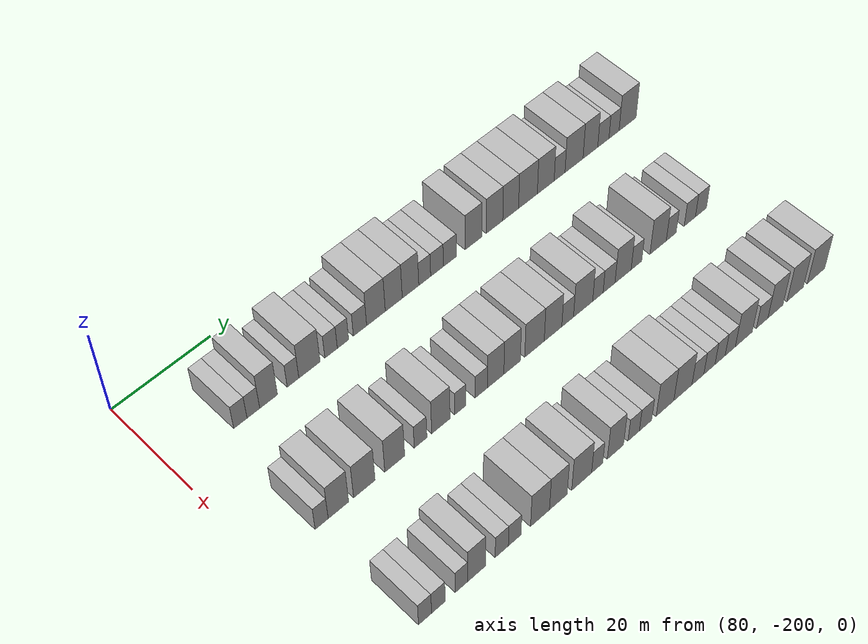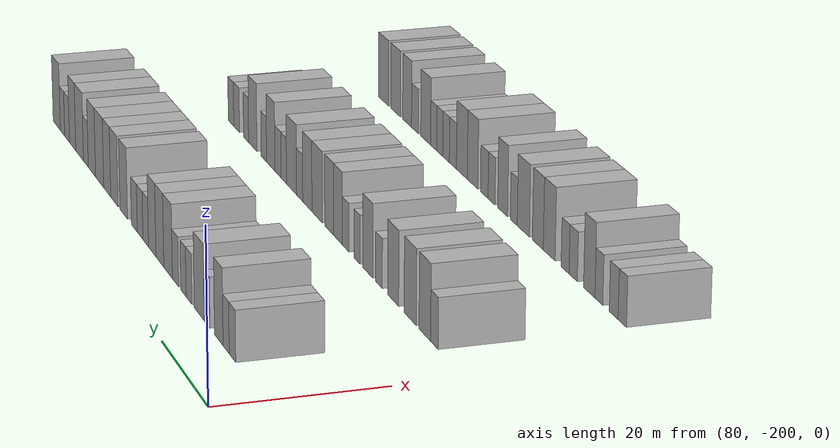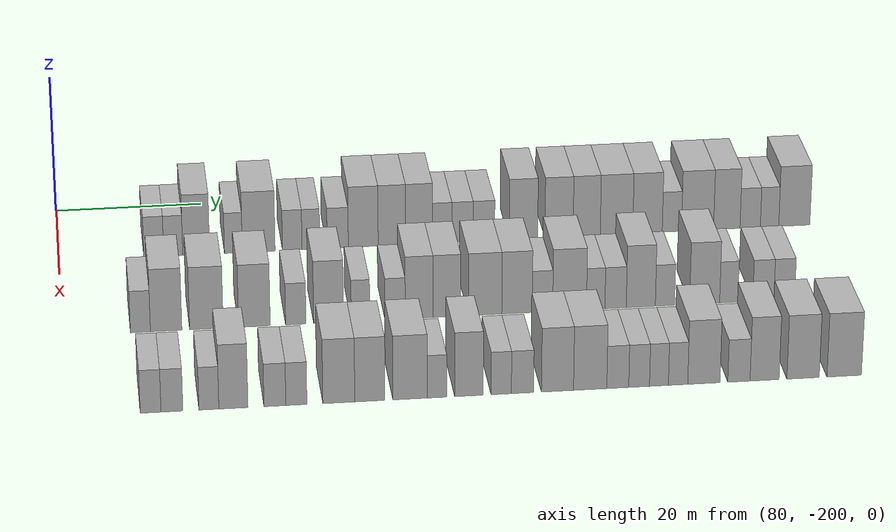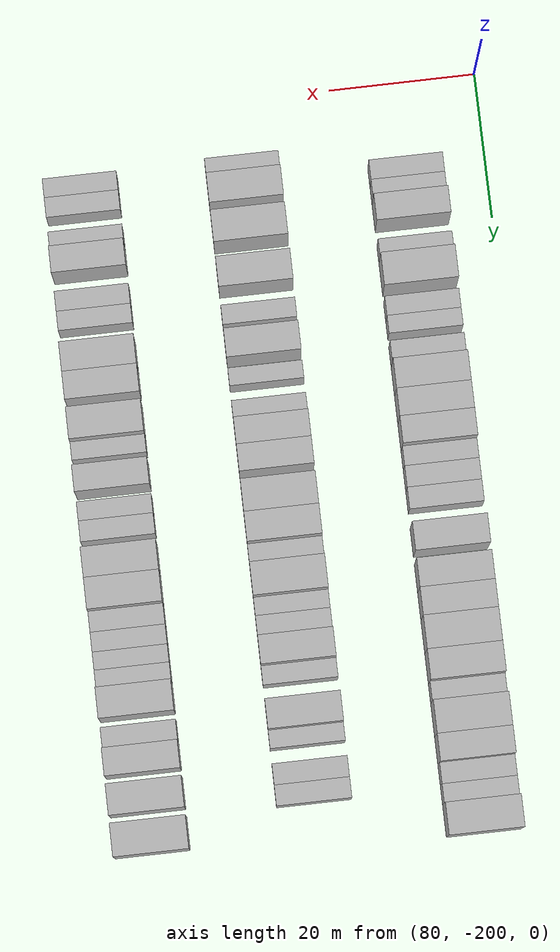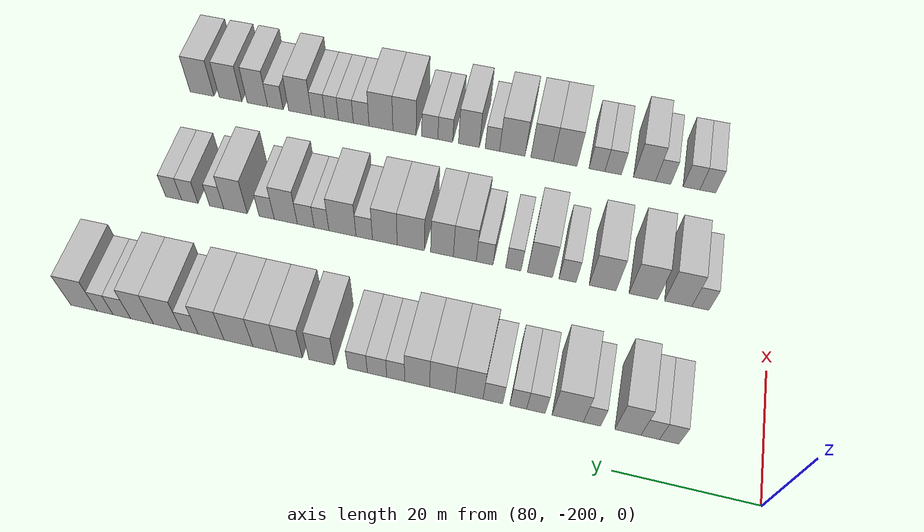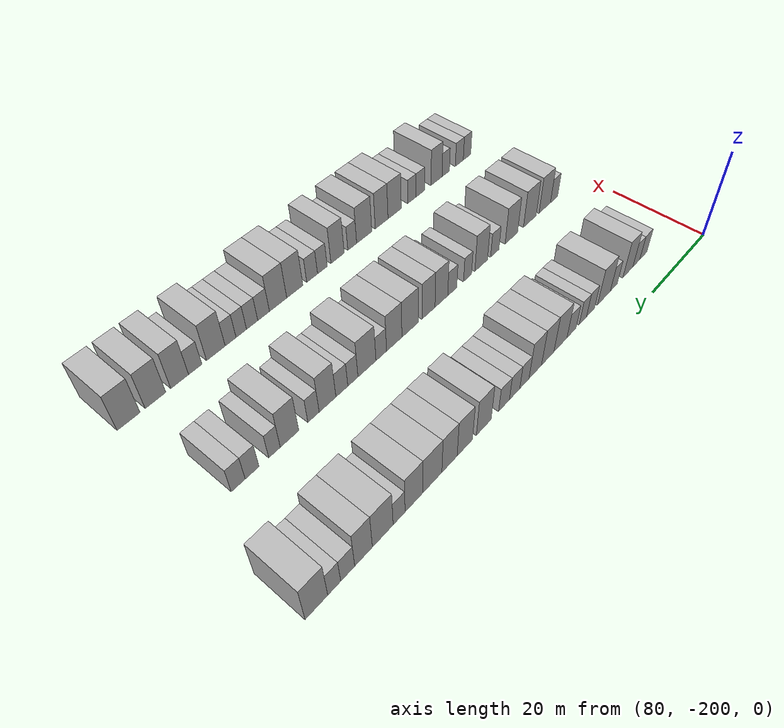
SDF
<sdf version="1.6">
 <world name="default">
  <model name="building_636">
   <static>1</static>
   <pose>91.0000 -187.2377 0 0.000000 0.000000 0.000000</pose>
   <link name="link">
    <pose>0 0 3.00 0 0 0</pose>
    <collision name="collision"><geometry><box><size>10.0000 2.6791 6.0000</size></box></geometry></collision>
    <visual name="visual">
     <cast_shadows>0</cast_shadows>
     <geometry><box><size>10.0000 2.6791 6.0000</size></box></geometry>
     <material>
      <script>
       <uri>model://HANNAS_wall/materials/scripts</uri>
       <uri>model://HANNAS_wall/materials/textures</uri>
       <name>vrc/HANNAS_wall</name>
      </script>
     </material>
    </visual>
   </link>
  </model>
  <model name="building_637">
   <static>1</static>
   <pose>91.0000 -184.6141 0 0.000000 0.000000 0.000000</pose>
   <link name="link">
    <pose>0 0 3.00 0 0 0</pose>
    <collision name="collision"><geometry><box><size>10.0000 2.5681 6.0000</size></box></geometry></collision>
    <visual name="visual">
     <cast_shadows>0</cast_shadows>
     <geometry><box><size>10.0000 2.5681 6.0000</size></box></geometry>
     <material>
      <script>
       <uri>model://HANNAS_wall/materials/scripts</uri>
       <uri>model://HANNAS_wall/materials/textures</uri>
       <name>vrc/HANNAS_wall</name>
      </script>
     </material>
    </visual>
   </link>
  </model>
  <model name="building_638">
   <static>1</static>
   <pose>91.0000 -181.5139 0 0.000000 0.000000 0.000000</pose>
   <link name="link">
    <pose>0 0 4.50 0 0 0</pose>
    <collision name="collision"><geometry><box><size>10.0000 3.6323 9.0000</size></box></geometry></collision>
    <visual name="visual">
     <cast_shadows>0</cast_shadows>
     <geometry><box><size>10.0000 3.6323 9.0000</size></box></geometry>
     <material>
      <script>
       <uri>model://HANNAS_wall/materials/scripts</uri>
       <uri>model://HANNAS_wall/materials/textures</uri>
       <name>vrc/HANNAS_wall</name>
      </script>
     </material>
    </visual>
   </link>
  </model>
  <model name="building_639">
   <static>1</static>
   <pose>91.0000 -176.4898 0 0.000000 0.000000 0.000000</pose>
   <link name="link">
    <pose>0 0 3.00 0 0 0</pose>
    <collision name="collision"><geometry><box><size>10.0000 2.4160 6.0000</size></box></geometry></collision>
    <visual name="visual">
     <cast_shadows>0</cast_shadows>
     <geometry><box><size>10.0000 2.4160 6.0000</size></box></geometry>
     <material>
      <script>
       <uri>model://HANNAS_wall/materials/scripts</uri>
       <uri>model://HANNAS_wall/materials/textures</uri>
       <name>vrc/HANNAS_wall</name>
      </script>
     </material>
    </visual>
   </link>
  </model>
  <model name="building_640">
   <static>1</static>
   <pose>91.0000 -173.0606 0 0.000000 0.000000 0.000000</pose>
   <link name="link">
    <pose>0 0 4.50 0 0 0</pose>
    <collision name="collision"><geometry><box><size>10.0000 4.4423 9.0000</size></box></geometry></collision>
    <visual name="visual">
     <cast_shadows>0</cast_shadows>
     <geometry><box><size>10.0000 4.4423 9.0000</size></box></geometry>
     <material>
      <script>
       <uri>model://HANNAS_wall/materials/scripts</uri>
       <uri>model://HANNAS_wall/materials/textures</uri>
       <name>vrc/HANNAS_wall</name>
      </script>
     </material>
    </visual>
   </link>
  </model>
  <model name="building_641">
   <static>1</static>
   <pose>91.0000 -168.5176 0 0.000000 0.000000 0.000000</pose>
   <link name="link">
    <pose>0 0 3.00 0 0 0</pose>
    <collision name="collision"><geometry><box><size>10.0000 2.6437 6.0000</size></box></geometry></collision>
    <visual name="visual">
     <cast_shadows>0</cast_shadows>
     <geometry><box><size>10.0000 2.6437 6.0000</size></box></geometry>
     <material>
      <script>
       <uri>model://HANNAS_wall/materials/scripts</uri>
       <uri>model://HANNAS_wall/materials/textures</uri>
       <name>vrc/HANNAS_wall</name>
      </script>
     </material>
    </visual>
   </link>
  </model>
  <model name="building_642">
   <static>1</static>
   <pose>91.0000 -165.9836 0 0.000000 0.000000 0.000000</pose>
   <link name="link">
    <pose>0 0 3.00 0 0 0</pose>
    <collision name="collision"><geometry><box><size>10.0000 2.4244 6.0000</size></box></geometry></collision>
    <visual name="visual">
     <cast_shadows>0</cast_shadows>
     <geometry><box><size>10.0000 2.4244 6.0000</size></box></geometry>
     <material>
      <script>
       <uri>model://HANNAS_wall/materials/scripts</uri>
       <uri>model://HANNAS_wall/materials/textures</uri>
       <name>vrc/HANNAS_wall</name>
      </script>
     </material>
    </visual>
   </link>
  </model>
  <model name="building_643">
   <static>1</static>
   <pose>91.0000 -162.3375 0 0.000000 0.000000 0.000000</pose>
   <link name="link">
    <pose>0 0 3.00 0 0 0</pose>
    <collision name="collision"><geometry><box><size>10.0000 2.8679 6.0000</size></box></geometry></collision>
    <visual name="visual">
     <cast_shadows>0</cast_shadows>
     <geometry><box><size>10.0000 2.8679 6.0000</size></box></geometry>
     <material>
      <script>
       <uri>model://HANNAS_wall/materials/scripts</uri>
       <uri>model://HANNAS_wall/materials/textures</uri>
       <name>vrc/HANNAS_wall</name>
      </script>
     </material>
    </visual>
   </link>
  </model>
  <model name="building_644">
   <static>1</static>
   <pose>91.0000 -158.8708 0 0.000000 0.000000 0.000000</pose>
   <link name="link">
    <pose>0 0 4.50 0 0 0</pose>
    <collision name="collision"><geometry><box><size>10.0000 4.0654 9.0000</size></box></geometry></collision>
    <visual name="visual">
     <cast_shadows>0</cast_shadows>
     <geometry><box><size>10.0000 4.0654 9.0000</size></box></geometry>
     <material>
      <script>
       <uri>model://HANNAS_wall/materials/scripts</uri>
       <uri>model://HANNAS_wall/materials/textures</uri>
       <name>vrc/HANNAS_wall</name>
      </script>
     </material>
    </visual>
   </link>
  </model>
  <model name="building_645">
   <static>1</static>
   <pose>91.0000 -154.9679 0 0.000000 0.000000 0.000000</pose>
   <link name="link">
    <pose>0 0 4.50 0 0 0</pose>
    <collision name="collision"><geometry><box><size>10.0000 3.7403 9.0000</size></box></geometry></collision>
    <visual name="visual">
     <cast_shadows>0</cast_shadows>
     <geometry><box><size>10.0000 3.7403 9.0000</size></box></geometry>
     <material>
      <script>
       <uri>model://HANNAS_wall/materials/scripts</uri>
       <uri>model://HANNAS_wall/materials/textures</uri>
       <name>vrc/HANNAS_wall</name>
      </script>
     </material>
    </visual>
   </link>
  </model>
  <model name="building_646">
   <static>1</static>
   <pose>91.0000 -151.2627 0 0.000000 0.000000 0.000000</pose>
   <link name="link">
    <pose>0 0 4.50 0 0 0</pose>
    <collision name="collision"><geometry><box><size>10.0000 3.6701 9.0000</size></box></geometry></collision>
    <visual name="visual">
     <cast_shadows>0</cast_shadows>
     <geometry><box><size>10.0000 3.6701 9.0000</size></box></geometry>
     <material>
      <script>
       <uri>model://HANNAS_wall/materials/scripts</uri>
       <uri>model://HANNAS_wall/materials/textures</uri>
       <name>vrc/HANNAS_wall</name>
      </script>
     </material>
    </visual>
   </link>
  </model>
  <model name="building_647">
   <static>1</static>
   <pose>91.0000 -148.0947 0 0.000000 0.000000 0.000000</pose>
   <link name="link">
    <pose>0 0 3.00 0 0 0</pose>
    <collision name="collision"><geometry><box><size>10.0000 2.6659 6.0000</size></box></geometry></collision>
    <visual name="visual">
     <cast_shadows>0</cast_shadows>
     <geometry><box><size>10.0000 2.6659 6.0000</size></box></geometry>
     <material>
      <script>
       <uri>model://HANNAS_wall/materials/scripts</uri>
       <uri>model://HANNAS_wall/materials/textures</uri>
       <name>vrc/HANNAS_wall</name>
      </script>
     </material>
    </visual>
   </link>
  </model>
  <model name="building_648">
   <static>1</static>
   <pose>91.0000 -145.3148 0 0.000000 0.000000 0.000000</pose>
   <link name="link">
    <pose>0 0 3.00 0 0 0</pose>
    <collision name="collision"><geometry><box><size>10.0000 2.8939 6.0000</size></box></geometry></collision>
    <visual name="visual">
     <cast_shadows>0</cast_shadows>
     <geometry><box><size>10.0000 2.8939 6.0000</size></box></geometry>
     <material>
      <script>
       <uri>model://HANNAS_wall/materials/scripts</uri>
       <uri>model://HANNAS_wall/materials/textures</uri>
       <name>vrc/HANNAS_wall</name>
      </script>
     </material>
    </visual>
   </link>
  </model>
  <model name="building_649">
   <static>1</static>
   <pose>91.0000 -142.3911 0 0.000000 0.000000 0.000000</pose>
   <link name="link">
    <pose>0 0 3.00 0 0 0</pose>
    <collision name="collision"><geometry><box><size>10.0000 2.9534 6.0000</size></box></geometry></collision>
    <visual name="visual">
     <cast_shadows>0</cast_shadows>
     <geometry><box><size>10.0000 2.9534 6.0000</size></box></geometry>
     <material>
      <script>
       <uri>model://HANNAS_wall/materials/scripts</uri>
       <uri>model://HANNAS_wall/materials/textures</uri>
       <name>vrc/HANNAS_wall</name>
      </script>
     </material>
    </visual>
   </link>
  </model>
  <model name="building_650">
   <static>1</static>
   <pose>91.0000 -136.9704 0 0.000000 0.000000 0.000000</pose>
   <link name="link">
    <pose>0 0 4.50 0 0 0</pose>
    <collision name="collision"><geometry><box><size>10.0000 3.8881 9.0000</size></box></geometry></collision>
    <visual name="visual">
     <cast_shadows>0</cast_shadows>
     <geometry><box><size>10.0000 3.8881 9.0000</size></box></geometry>
     <material>
      <script>
       <uri>model://HANNAS_wall/materials/scripts</uri>
       <uri>model://HANNAS_wall/materials/textures</uri>
       <name>vrc/HANNAS_wall</name>
      </script>
     </material>
    </visual>
   </link>
  </model>
  <model name="building_651">
   <static>1</static>
   <pose>91.0000 -132.0868 0 0.000000 0.000000 0.000000</pose>
   <link name="link">
    <pose>0 0 4.50 0 0 0</pose>
    <collision name="collision"><geometry><box><size>10.0000 3.8790 9.0000</size></box></geometry></collision>
    <visual name="visual">
     <cast_shadows>0</cast_shadows>
     <geometry><box><size>10.0000 3.8790 9.0000</size></box></geometry>
     <material>
      <script>
       <uri>model://HANNAS_wall/materials/scripts</uri>
       <uri>model://HANNAS_wall/materials/textures</uri>
       <name>vrc/HANNAS_wall</name>
      </script>
     </material>
    </visual>
   </link>
  </model>
  <model name="building_652">
   <static>1</static>
   <pose>91.0000 -128.2786 0 0.000000 0.000000 0.000000</pose>
   <link name="link">
    <pose>0 0 4.50 0 0 0</pose>
    <collision name="collision"><geometry><box><size>10.0000 3.7375 9.0000</size></box></geometry></collision>
    <visual name="visual">
     <cast_shadows>0</cast_shadows>
     <geometry><box><size>10.0000 3.7375 9.0000</size></box></geometry>
     <material>
      <script>
       <uri>model://HANNAS_wall/materials/scripts</uri>
       <uri>model://HANNAS_wall/materials/textures</uri>
       <name>vrc/HANNAS_wall</name>
      </script>
     </material>
    </visual>
   </link>
  </model>
  <model name="building_653">
   <static>1</static>
   <pose>91.0000 -124.1654 0 0.000000 0.000000 0.000000</pose>
   <link name="link">
    <pose>0 0 4.50 0 0 0</pose>
    <collision name="collision"><geometry><box><size>10.0000 4.4890 9.0000</size></box></geometry></collision>
    <visual name="visual">
     <cast_shadows>0</cast_shadows>
     <geometry><box><size>10.0000 4.4890 9.0000</size></box></geometry>
     <material>
      <script>
       <uri>model://HANNAS_wall/materials/scripts</uri>
       <uri>model://HANNAS_wall/materials/textures</uri>
       <name>vrc/HANNAS_wall</name>
      </script>
     </material>
    </visual>
   </link>
  </model>
  <model name="building_654">
   <static>1</static>
   <pose>91.0000 -119.8847 0 0.000000 0.000000 0.000000</pose>
   <link name="link">
    <pose>0 0 4.50 0 0 0</pose>
    <collision name="collision"><geometry><box><size>10.0000 4.0724 9.0000</size></box></geometry></collision>
    <visual name="visual">
     <cast_shadows>0</cast_shadows>
     <geometry><box><size>10.0000 4.0724 9.0000</size></box></geometry>
     <material>
      <script>
       <uri>model://HANNAS_wall/materials/scripts</uri>
       <uri>model://HANNAS_wall/materials/textures</uri>
       <name>vrc/HANNAS_wall</name>
      </script>
     </material>
    </visual>
   </link>
  </model>
  <model name="building_655">
   <static>1</static>
   <pose>91.0000 -116.5211 0 0.000000 0.000000 0.000000</pose>
   <link name="link">
    <pose>0 0 3.00 0 0 0</pose>
    <collision name="collision"><geometry><box><size>10.0000 2.6549 6.0000</size></box></geometry></collision>
    <visual name="visual">
     <cast_shadows>0</cast_shadows>
     <geometry><box><size>10.0000 2.6549 6.0000</size></box></geometry>
     <material>
      <script>
       <uri>model://HANNAS_wall/materials/scripts</uri>
       <uri>model://HANNAS_wall/materials/textures</uri>
       <name>vrc/HANNAS_wall</name>
      </script>
     </material>
    </visual>
   </link>
  </model>
  <model name="building_656">
   <static>1</static>
   <pose>91.0000 -112.9680 0 0.000000 0.000000 0.000000</pose>
   <link name="link">
    <pose>0 0 4.50 0 0 0</pose>
    <collision name="collision"><geometry><box><size>10.0000 4.4515 9.0000</size></box></geometry></collision>
    <visual name="visual">
     <cast_shadows>0</cast_shadows>
     <geometry><box><size>10.0000 4.4515 9.0000</size></box></geometry>
     <material>
      <script>
       <uri>model://HANNAS_wall/materials/scripts</uri>
       <uri>model://HANNAS_wall/materials/textures</uri>
       <name>vrc/HANNAS_wall</name>
      </script>
     </material>
    </visual>
   </link>
  </model>
  <model name="building_657">
   <static>1</static>
   <pose>91.0000 -108.9098 0 0.000000 0.000000 0.000000</pose>
   <link name="link">
    <pose>0 0 4.50 0 0 0</pose>
    <collision name="collision"><geometry><box><size>10.0000 3.6649 9.0000</size></box></geometry></collision>
    <visual name="visual">
     <cast_shadows>0</cast_shadows>
     <geometry><box><size>10.0000 3.6649 9.0000</size></box></geometry>
     <material>
      <script>
       <uri>model://HANNAS_wall/materials/scripts</uri>
       <uri>model://HANNAS_wall/materials/textures</uri>
       <name>vrc/HANNAS_wall</name>
      </script>
     </material>
    </visual>
   </link>
  </model>
  <model name="building_658">
   <static>1</static>
   <pose>91.0000 -105.6638 0 0.000000 0.000000 0.000000</pose>
   <link name="link">
    <pose>0 0 3.00 0 0 0</pose>
    <collision name="collision"><geometry><box><size>10.0000 2.8270 6.0000</size></box></geometry></collision>
    <visual name="visual">
     <cast_shadows>0</cast_shadows>
     <geometry><box><size>10.0000 2.8270 6.0000</size></box></geometry>
     <material>
      <script>
       <uri>model://HANNAS_wall/materials/scripts</uri>
       <uri>model://HANNAS_wall/materials/textures</uri>
       <name>vrc/HANNAS_wall</name>
      </script>
     </material>
    </visual>
   </link>
  </model>
  <model name="building_659">
   <static>1</static>
   <pose>91.0000 -102.9714 0 0.000000 0.000000 0.000000</pose>
   <link name="link">
    <pose>0 0 3.00 0 0 0</pose>
    <collision name="collision"><geometry><box><size>10.0000 2.5580 6.0000</size></box></geometry></collision>
    <visual name="visual">
     <cast_shadows>0</cast_shadows>
     <geometry><box><size>10.0000 2.5580 6.0000</size></box></geometry>
     <material>
      <script>
       <uri>model://HANNAS_wall/materials/scripts</uri>
       <uri>model://HANNAS_wall/materials/textures</uri>
       <name>vrc/HANNAS_wall</name>
      </script>
     </material>
    </visual>
   </link>
  </model>
  <model name="building_660">
   <static>1</static>
   <pose>91.0000 -99.5256 0 0.000000 0.000000 0.000000</pose>
   <link name="link">
    <pose>0 0 4.50 0 0 0</pose>
    <collision name="collision"><geometry><box><size>10.0000 4.3335 9.0000</size></box></geometry></collision>
    <visual name="visual">
     <cast_shadows>0</cast_shadows>
     <geometry><box><size>10.0000 4.3335 9.0000</size></box></geometry>
     <material>
      <script>
       <uri>model://HANNAS_wall/materials/scripts</uri>
       <uri>model://HANNAS_wall/materials/textures</uri>
       <name>vrc/HANNAS_wall</name>
      </script>
     </material>
    </visual>
   </link>
  </model>
  <model name="building_827">
   <static>1</static>
   <pose>113.0000 -189.9483 0 0.000000 0.000000 0.000000</pose>
   <link name="link">
    <pose>0 0 3.00 0 0 0</pose>
    <collision name="collision"><geometry><box><size>10.0000 2.5957 6.0000</size></box></geometry></collision>
    <visual name="visual">
     <cast_shadows>0</cast_shadows>
     <geometry><box><size>10.0000 2.5957 6.0000</size></box></geometry>
     <material>
      <script>
       <uri>model://HANNAS_wall/materials/scripts</uri>
       <uri>model://HANNAS_wall/materials/textures</uri>
       <name>vrc/HANNAS_wall</name>
      </script>
     </material>
    </visual>
   </link>
  </model>
  <model name="building_828">
   <static>1</static>
   <pose>113.0000 -186.6069 0 0.000000 0.000000 0.000000</pose>
   <link name="link">
    <pose>0 0 4.50 0 0 0</pose>
    <collision name="collision"><geometry><box><size>10.0000 4.0871 9.0000</size></box></geometry></collision>
    <visual name="visual">
     <cast_shadows>0</cast_shadows>
     <geometry><box><size>10.0000 4.0871 9.0000</size></box></geometry>
     <material>
      <script>
       <uri>model://HANNAS_wall/materials/scripts</uri>
       <uri>model://HANNAS_wall/materials/textures</uri>
       <name>vrc/HANNAS_wall</name>
      </script>
     </material>
    </visual>
   </link>
  </model>
  <model name="building_829">
   <static>1</static>
   <pose>113.0000 -181.3779 0 0.000000 0.000000 0.000000</pose>
   <link name="link">
    <pose>0 0 4.50 0 0 0</pose>
    <collision name="collision"><geometry><box><size>10.0000 4.3709 9.0000</size></box></geometry></collision>
    <visual name="visual">
     <cast_shadows>0</cast_shadows>
     <geometry><box><size>10.0000 4.3709 9.0000</size></box></geometry>
     <material>
      <script>
       <uri>model://HANNAS_wall/materials/scripts</uri>
       <uri>model://HANNAS_wall/materials/textures</uri>
       <name>vrc/HANNAS_wall</name>
      </script>
     </material>
    </visual>
   </link>
  </model>
  <model name="building_830">
   <static>1</static>
   <pose>113.0000 -175.1316 0 0.000000 0.000000 0.000000</pose>
   <link name="link">
    <pose>0 0 4.50 0 0 0</pose>
    <collision name="collision"><geometry><box><size>10.0000 4.1217 9.0000</size></box></geometry></collision>
    <visual name="visual">
     <cast_shadows>0</cast_shadows>
     <geometry><box><size>10.0000 4.1217 9.0000</size></box></geometry>
     <material>
      <script>
       <uri>model://HANNAS_wall/materials/scripts</uri>
       <uri>model://HANNAS_wall/materials/textures</uri>
       <name>vrc/HANNAS_wall</name>
      </script>
     </material>
    </visual>
   </link>
  </model>
  <model name="building_831">
   <static>1</static>
   <pose>113.0000 -169.7369 0 0.000000 0.000000 0.000000</pose>
   <link name="link">
    <pose>0 0 3.00 0 0 0</pose>
    <collision name="collision"><geometry><box><size>10.0000 2.6677 6.0000</size></box></geometry></collision>
    <visual name="visual">
     <cast_shadows>0</cast_shadows>
     <geometry><box><size>10.0000 2.6677 6.0000</size></box></geometry>
     <material>
      <script>
       <uri>model://HANNAS_wall/materials/scripts</uri>
       <uri>model://HANNAS_wall/materials/textures</uri>
       <name>vrc/HANNAS_wall</name>
      </script>
     </material>
    </visual>
   </link>
  </model>
  <model name="building_832">
   <static>1</static>
   <pose>113.0000 -165.4444 0 0.000000 0.000000 0.000000</pose>
   <link name="link">
    <pose>0 0 4.50 0 0 0</pose>
    <collision name="collision"><geometry><box><size>10.0000 3.9172 9.0000</size></box></geometry></collision>
    <visual name="visual">
     <cast_shadows>0</cast_shadows>
     <geometry><box><size>10.0000 3.9172 9.0000</size></box></geometry>
     <material>
      <script>
       <uri>model://HANNAS_wall/materials/scripts</uri>
       <uri>model://HANNAS_wall/materials/textures</uri>
       <name>vrc/HANNAS_wall</name>
      </script>
     </material>
    </visual>
   </link>
  </model>
  <model name="building_833">
   <static>1</static>
   <pose>113.0000 -161.2745 0 0.000000 0.000000 0.000000</pose>
   <link name="link">
    <pose>0 0 3.00 0 0 0</pose>
    <collision name="collision"><geometry><box><size>10.0000 2.4227 6.0000</size></box></geometry></collision>
    <visual name="visual">
     <cast_shadows>0</cast_shadows>
     <geometry><box><size>10.0000 2.4227 6.0000</size></box></geometry>
     <material>
      <script>
       <uri>model://HANNAS_wall/materials/scripts</uri>
       <uri>model://HANNAS_wall/materials/textures</uri>
       <name>vrc/HANNAS_wall</name>
      </script>
     </material>
    </visual>
   </link>
  </model>
  <model name="building_834">
   <static>1</static>
   <pose>113.0000 -156.7333 0 0.000000 0.000000 0.000000</pose>
   <link name="link">
    <pose>0 0 3.00 0 0 0</pose>
    <collision name="collision"><geometry><box><size>10.0000 2.6597 6.0000</size></box></geometry></collision>
    <visual name="visual">
     <cast_shadows>0</cast_shadows>
     <geometry><box><size>10.0000 2.6597 6.0000</size></box></geometry>
     <material>
      <script>
       <uri>model://HANNAS_wall/materials/scripts</uri>
       <uri>model://HANNAS_wall/materials/textures</uri>
       <name>vrc/HANNAS_wall</name>
      </script>
     </material>
    </visual>
   </link>
  </model>
  <model name="building_835">
   <static>1</static>
   <pose>113.0000 -153.5796 0 0.000000 0.000000 0.000000</pose>
   <link name="link">
    <pose>0 0 4.50 0 0 0</pose>
    <collision name="collision"><geometry><box><size>10.0000 3.6476 9.0000</size></box></geometry></collision>
    <visual name="visual">
     <cast_shadows>0</cast_shadows>
     <geometry><box><size>10.0000 3.6476 9.0000</size></box></geometry>
     <material>
      <script>
       <uri>model://HANNAS_wall/materials/scripts</uri>
       <uri>model://HANNAS_wall/materials/textures</uri>
       <name>vrc/HANNAS_wall</name>
      </script>
     </material>
    </visual>
   </link>
  </model>
  <model name="building_836">
   <static>1</static>
   <pose>113.0000 -149.9295 0 0.000000 0.000000 0.000000</pose>
   <link name="link">
    <pose>0 0 4.50 0 0 0</pose>
    <collision name="collision"><geometry><box><size>10.0000 3.6526 9.0000</size></box></geometry></collision>
    <visual name="visual">
     <cast_shadows>0</cast_shadows>
     <geometry><box><size>10.0000 3.6526 9.0000</size></box></geometry>
     <material>
      <script>
       <uri>model://HANNAS_wall/materials/scripts</uri>
       <uri>model://HANNAS_wall/materials/textures</uri>
       <name>vrc/HANNAS_wall</name>
      </script>
     </material>
    </visual>
   </link>
  </model>
  <model name="building_837">
   <static>1</static>
   <pose>113.0000 -144.9014 0 0.000000 0.000000 0.000000</pose>
   <link name="link">
    <pose>0 0 4.50 0 0 0</pose>
    <collision name="collision"><geometry><box><size>10.0000 4.4037 9.0000</size></box></geometry></collision>
    <visual name="visual">
     <cast_shadows>0</cast_shadows>
     <geometry><box><size>10.0000 4.4037 9.0000</size></box></geometry>
     <material>
      <script>
       <uri>model://HANNAS_wall/materials/scripts</uri>
       <uri>model://HANNAS_wall/materials/textures</uri>
       <name>vrc/HANNAS_wall</name>
      </script>
     </material>
    </visual>
   </link>
  </model>
  <model name="building_838">
   <static>1</static>
   <pose>113.0000 -140.6879 0 0.000000 0.000000 0.000000</pose>
   <link name="link">
    <pose>0 0 4.50 0 0 0</pose>
    <collision name="collision"><geometry><box><size>10.0000 4.0234 9.0000</size></box></geometry></collision>
    <visual name="visual">
     <cast_shadows>0</cast_shadows>
     <geometry><box><size>10.0000 4.0234 9.0000</size></box></geometry>
     <material>
      <script>
       <uri>model://HANNAS_wall/materials/scripts</uri>
       <uri>model://HANNAS_wall/materials/textures</uri>
       <name>vrc/HANNAS_wall</name>
      </script>
     </material>
    </visual>
   </link>
  </model>
  <model name="building_839">
   <static>1</static>
   <pose>113.0000 -137.3261 0 0.000000 0.000000 0.000000</pose>
   <link name="link">
    <pose>0 0 3.00 0 0 0</pose>
    <collision name="collision"><geometry><box><size>10.0000 2.7001 6.0000</size></box></geometry></collision>
    <visual name="visual">
     <cast_shadows>0</cast_shadows>
     <geometry><box><size>10.0000 2.7001 6.0000</size></box></geometry>
     <material>
      <script>
       <uri>model://HANNAS_wall/materials/scripts</uri>
       <uri>model://HANNAS_wall/materials/textures</uri>
       <name>vrc/HANNAS_wall</name>
      </script>
     </material>
    </visual>
   </link>
  </model>
  <model name="building_840">
   <static>1</static>
   <pose>113.0000 -133.7384 0 0.000000 0.000000 0.000000</pose>
   <link name="link">
    <pose>0 0 4.50 0 0 0</pose>
    <collision name="collision"><geometry><box><size>10.0000 4.4753 9.0000</size></box></geometry></collision>
    <visual name="visual">
     <cast_shadows>0</cast_shadows>
     <geometry><box><size>10.0000 4.4753 9.0000</size></box></geometry>
     <material>
      <script>
       <uri>model://HANNAS_wall/materials/scripts</uri>
       <uri>model://HANNAS_wall/materials/textures</uri>
       <name>vrc/HANNAS_wall</name>
      </script>
     </material>
    </visual>
   </link>
  </model>
  <model name="building_841">
   <static>1</static>
   <pose>113.0000 -130.2768 0 0.000000 0.000000 0.000000</pose>
   <link name="link">
    <pose>0 0 3.00 0 0 0</pose>
    <collision name="collision"><geometry><box><size>10.0000 2.4479 6.0000</size></box></geometry></collision>
    <visual name="visual">
     <cast_shadows>0</cast_shadows>
     <geometry><box><size>10.0000 2.4479 6.0000</size></box></geometry>
     <material>
      <script>
       <uri>model://HANNAS_wall/materials/scripts</uri>
       <uri>model://HANNAS_wall/materials/textures</uri>
       <name>vrc/HANNAS_wall</name>
      </script>
     </material>
    </visual>
   </link>
  </model>
  <model name="building_842">
   <static>1</static>
   <pose>113.0000 -127.6406 0 0.000000 0.000000 0.000000</pose>
   <link name="link">
    <pose>0 0 3.00 0 0 0</pose>
    <collision name="collision"><geometry><box><size>10.0000 2.8245 6.0000</size></box></geometry></collision>
    <visual name="visual">
     <cast_shadows>0</cast_shadows>
     <geometry><box><size>10.0000 2.8245 6.0000</size></box></geometry>
     <material>
      <script>
       <uri>model://HANNAS_wall/materials/scripts</uri>
       <uri>model://HANNAS_wall/materials/textures</uri>
       <name>vrc/HANNAS_wall</name>
      </script>
     </material>
    </visual>
   </link>
  </model>
  <model name="building_843">
   <static>1</static>
   <pose>113.0000 -124.2932 0 0.000000 0.000000 0.000000</pose>
   <link name="link">
    <pose>0 0 4.50 0 0 0</pose>
    <collision name="collision"><geometry><box><size>10.0000 3.8702 9.0000</size></box></geometry></collision>
    <visual name="visual">
     <cast_shadows>0</cast_shadows>
     <geometry><box><size>10.0000 3.8702 9.0000</size></box></geometry>
     <material>
      <script>
       <uri>model://HANNAS_wall/materials/scripts</uri>
       <uri>model://HANNAS_wall/materials/textures</uri>
       <name>vrc/HANNAS_wall</name>
      </script>
     </material>
    </visual>
   </link>
  </model>
  <model name="building_844">
   <static>1</static>
   <pose>113.0000 -121.0757 0 0.000000 0.000000 0.000000</pose>
   <link name="link">
    <pose>0 0 3.00 0 0 0</pose>
    <collision name="collision"><geometry><box><size>10.0000 2.5649 6.0000</size></box></geometry></collision>
    <visual name="visual">
     <cast_shadows>0</cast_shadows>
     <geometry><box><size>10.0000 2.5649 6.0000</size></box></geometry>
     <material>
      <script>
       <uri>model://HANNAS_wall/materials/scripts</uri>
       <uri>model://HANNAS_wall/materials/textures</uri>
       <name>vrc/HANNAS_wall</name>
      </script>
     </material>
    </visual>
   </link>
  </model>
  <model name="building_845">
   <static>1</static>
   <pose>113.0000 -115.7921 0 0.000000 0.000000 0.000000</pose>
   <link name="link">
    <pose>0 0 4.50 0 0 0</pose>
    <collision name="collision"><geometry><box><size>10.0000 4.0022 9.0000</size></box></geometry></collision>
    <visual name="visual">
     <cast_shadows>0</cast_shadows>
     <geometry><box><size>10.0000 4.0022 9.0000</size></box></geometry>
     <material>
      <script>
       <uri>model://HANNAS_wall/materials/scripts</uri>
       <uri>model://HANNAS_wall/materials/textures</uri>
       <name>vrc/HANNAS_wall</name>
      </script>
     </material>
    </visual>
   </link>
  </model>
  <model name="building_846">
   <static>1</static>
   <pose>113.0000 -112.5711 0 0.000000 0.000000 0.000000</pose>
   <link name="link">
    <pose>0 0 3.00 0 0 0</pose>
    <collision name="collision"><geometry><box><size>10.0000 2.4397 6.0000</size></box></geometry></collision>
    <visual name="visual">
     <cast_shadows>0</cast_shadows>
     <geometry><box><size>10.0000 2.4397 6.0000</size></box></geometry>
     <material>
      <script>
       <uri>model://HANNAS_wall/materials/scripts</uri>
       <uri>model://HANNAS_wall/materials/textures</uri>
       <name>vrc/HANNAS_wall</name>
      </script>
     </material>
    </visual>
   </link>
  </model>
  <model name="building_847">
   <static>1</static>
   <pose>113.0000 -107.9463 0 0.000000 0.000000 0.000000</pose>
   <link name="link">
    <pose>0 0 3.00 0 0 0</pose>
    <collision name="collision"><geometry><box><size>10.0000 2.8099 6.0000</size></box></geometry></collision>
    <visual name="visual">
     <cast_shadows>0</cast_shadows>
     <geometry><box><size>10.0000 2.8099 6.0000</size></box></geometry>
     <material>
      <script>
       <uri>model://HANNAS_wall/materials/scripts</uri>
       <uri>model://HANNAS_wall/materials/textures</uri>
       <name>vrc/HANNAS_wall</name>
      </script>
     </material>
    </visual>
   </link>
  </model>
  <model name="building_848">
   <static>1</static>
   <pose>113.0000 -105.1525 0 0.000000 0.000000 0.000000</pose>
   <link name="link">
    <pose>0 0 3.00 0 0 0</pose>
    <collision name="collision"><geometry><box><size>10.0000 2.7777 6.0000</size></box></geometry></collision>
    <visual name="visual">
     <cast_shadows>0</cast_shadows>
     <geometry><box><size>10.0000 2.7777 6.0000</size></box></geometry>
     <material>
      <script>
       <uri>model://HANNAS_wall/materials/scripts</uri>
       <uri>model://HANNAS_wall/materials/textures</uri>
       <name>vrc/HANNAS_wall</name>
      </script>
     </material>
    </visual>
   </link>
  </model>
  <model name="building_1013">
   <static>1</static>
   <pose>135.0000 -189.5847 0 0.000000 0.000000 0.000000</pose>
   <link name="link">
    <pose>0 0 3.00 0 0 0</pose>
    <collision name="collision"><geometry><box><size>10.0000 2.5909 6.0000</size></box></geometry></collision>
    <visual name="visual">
     <cast_shadows>0</cast_shadows>
     <geometry><box><size>10.0000 2.5909 6.0000</size></box></geometry>
     <material>
      <script>
       <uri>model://HANNAS_wall/materials/scripts</uri>
       <uri>model://HANNAS_wall/materials/textures</uri>
       <name>vrc/HANNAS_wall</name>
      </script>
     </material>
    </visual>
   </link>
  </model>
  <model name="building_1014">
   <static>1</static>
   <pose>135.0000 -186.9237 0 0.000000 0.000000 0.000000</pose>
   <link name="link">
    <pose>0 0 3.00 0 0 0</pose>
    <collision name="collision"><geometry><box><size>10.0000 2.7310 6.0000</size></box></geometry></collision>
    <visual name="visual">
     <cast_shadows>0</cast_shadows>
     <geometry><box><size>10.0000 2.7310 6.0000</size></box></geometry>
     <material>
      <script>
       <uri>model://HANNAS_wall/materials/scripts</uri>
       <uri>model://HANNAS_wall/materials/textures</uri>
       <name>vrc/HANNAS_wall</name>
      </script>
     </material>
    </visual>
   </link>
  </model>
  <model name="building_1015">
   <static>1</static>
   <pose>135.0000 -182.3126 0 0.000000 0.000000 0.000000</pose>
   <link name="link">
    <pose>0 0 3.00 0 0 0</pose>
    <collision name="collision"><geometry><box><size>10.0000 2.4912 6.0000</size></box></geometry></collision>
    <visual name="visual">
     <cast_shadows>0</cast_shadows>
     <geometry><box><size>10.0000 2.4912 6.0000</size></box></geometry>
     <material>
      <script>
       <uri>model://HANNAS_wall/materials/scripts</uri>
       <uri>model://HANNAS_wall/materials/textures</uri>
       <name>vrc/HANNAS_wall</name>
      </script>
     </material>
    </visual>
   </link>
  </model>
  <model name="building_1016">
   <static>1</static>
   <pose>135.0000 -179.2459 0 0.000000 0.000000 0.000000</pose>
   <link name="link">
    <pose>0 0 4.50 0 0 0</pose>
    <collision name="collision"><geometry><box><size>10.0000 3.6422 9.0000</size></box></geometry></collision>
    <visual name="visual">
     <cast_shadows>0</cast_shadows>
     <geometry><box><size>10.0000 3.6422 9.0000</size></box></geometry>
     <material>
      <script>
       <uri>model://HANNAS_wall/materials/scripts</uri>
       <uri>model://HANNAS_wall/materials/textures</uri>
       <name>vrc/HANNAS_wall</name>
      </script>
     </material>
    </visual>
   </link>
  </model>
  <model name="building_1017">
   <static>1</static>
   <pose>135.0000 -174.0530 0 0.000000 0.000000 0.000000</pose>
   <link name="link">
    <pose>0 0 3.00 0 0 0</pose>
    <collision name="collision"><geometry><box><size>10.0000 2.7435 6.0000</size></box></geometry></collision>
    <visual name="visual">
     <cast_shadows>0</cast_shadows>
     <geometry><box><size>10.0000 2.7435 6.0000</size></box></geometry>
     <material>
      <script>
       <uri>model://HANNAS_wall/materials/scripts</uri>
       <uri>model://HANNAS_wall/materials/textures</uri>
       <name>vrc/HANNAS_wall</name>
      </script>
     </material>
    </visual>
   </link>
  </model>
  <model name="building_1018">
   <static>1</static>
   <pose>135.0000 -171.3603 0 0.000000 0.000000 0.000000</pose>
   <link name="link">
    <pose>0 0 3.00 0 0 0</pose>
    <collision name="collision"><geometry><box><size>10.0000 2.6419 6.0000</size></box></geometry></collision>
    <visual name="visual">
     <cast_shadows>0</cast_shadows>
     <geometry><box><size>10.0000 2.6419 6.0000</size></box></geometry>
     <material>
      <script>
       <uri>model://HANNAS_wall/materials/scripts</uri>
       <uri>model://HANNAS_wall/materials/textures</uri>
       <name>vrc/HANNAS_wall</name>
      </script>
     </material>
    </visual>
   </link>
  </model>
  <model name="building_1019">
   <static>1</static>
   <pose>135.0000 -166.0308 0 0.000000 0.000000 0.000000</pose>
   <link name="link">
    <pose>0 0 4.50 0 0 0</pose>
    <collision name="collision"><geometry><box><size>10.0000 4.0170 9.0000</size></box></geometry></collision>
    <visual name="visual">
     <cast_shadows>0</cast_shadows>
     <geometry><box><size>10.0000 4.0170 9.0000</size></box></geometry>
     <material>
      <script>
       <uri>model://HANNAS_wall/materials/scripts</uri>
       <uri>model://HANNAS_wall/materials/textures</uri>
       <name>vrc/HANNAS_wall</name>
      </script>
     </material>
    </visual>
   </link>
  </model>
  <model name="building_1020">
   <static>1</static>
   <pose>135.0000 -162.1269 0 0.000000 0.000000 0.000000</pose>
   <link name="link">
    <pose>0 0 4.50 0 0 0</pose>
    <collision name="collision"><geometry><box><size>10.0000 3.7908 9.0000</size></box></geometry></collision>
    <visual name="visual">
     <cast_shadows>0</cast_shadows>
     <geometry><box><size>10.0000 3.7908 9.0000</size></box></geometry>
     <material>
      <script>
       <uri>model://HANNAS_wall/materials/scripts</uri>
       <uri>model://HANNAS_wall/materials/textures</uri>
       <name>vrc/HANNAS_wall</name>
      </script>
     </material>
    </visual>
   </link>
  </model>
  <model name="building_1021">
   <static>1</static>
   <pose>135.0000 -157.0652 0 0.000000 0.000000 0.000000</pose>
   <link name="link">
    <pose>0 0 4.50 0 0 0</pose>
    <collision name="collision"><geometry><box><size>10.0000 4.3327 9.0000</size></box></geometry></collision>
    <visual name="visual">
     <cast_shadows>0</cast_shadows>
     <geometry><box><size>10.0000 4.3327 9.0000</size></box></geometry>
     <material>
      <script>
       <uri>model://HANNAS_wall/materials/scripts</uri>
       <uri>model://HANNAS_wall/materials/textures</uri>
       <name>vrc/HANNAS_wall</name>
      </script>
     </material>
    </visual>
   </link>
  </model>
  <model name="building_1022">
   <static>1</static>
   <pose>135.0000 -153.6614 0 0.000000 0.000000 0.000000</pose>
   <link name="link">
    <pose>0 0 3.00 0 0 0</pose>
    <collision name="collision"><geometry><box><size>10.0000 2.4748 6.0000</size></box></geometry></collision>
    <visual name="visual">
     <cast_shadows>0</cast_shadows>
     <geometry><box><size>10.0000 2.4748 6.0000</size></box></geometry>
     <material>
      <script>
       <uri>model://HANNAS_wall/materials/scripts</uri>
       <uri>model://HANNAS_wall/materials/textures</uri>
       <name>vrc/HANNAS_wall</name>
      </script>
     </material>
    </visual>
   </link>
  </model>
  <model name="building_1023">
   <static>1</static>
   <pose>135.0000 -149.6161 0 0.000000 0.000000 0.000000</pose>
   <link name="link">
    <pose>0 0 4.50 0 0 0</pose>
    <collision name="collision"><geometry><box><size>10.0000 3.6158 9.0000</size></box></geometry></collision>
    <visual name="visual">
     <cast_shadows>0</cast_shadows>
     <geometry><box><size>10.0000 3.6158 9.0000</size></box></geometry>
     <material>
      <script>
       <uri>model://HANNAS_wall/materials/scripts</uri>
       <uri>model://HANNAS_wall/materials/textures</uri>
       <name>vrc/HANNAS_wall</name>
      </script>
     </material>
    </visual>
   </link>
  </model>
  <model name="building_1024">
   <static>1</static>
   <pose>135.0000 -145.5218 0 0.000000 0.000000 0.000000</pose>
   <link name="link">
    <pose>0 0 3.00 0 0 0</pose>
    <collision name="collision"><geometry><box><size>10.0000 2.5726 6.0000</size></box></geometry></collision>
    <visual name="visual">
     <cast_shadows>0</cast_shadows>
     <geometry><box><size>10.0000 2.5726 6.0000</size></box></geometry>
     <material>
      <script>
       <uri>model://HANNAS_wall/materials/scripts</uri>
       <uri>model://HANNAS_wall/materials/textures</uri>
       <name>vrc/HANNAS_wall</name>
      </script>
     </material>
    </visual>
   </link>
  </model>
  <model name="building_1025">
   <static>1</static>
   <pose>135.0000 -142.8267 0 0.000000 0.000000 0.000000</pose>
   <link name="link">
    <pose>0 0 3.00 0 0 0</pose>
    <collision name="collision"><geometry><box><size>10.0000 2.8177 6.0000</size></box></geometry></collision>
    <visual name="visual">
     <cast_shadows>0</cast_shadows>
     <geometry><box><size>10.0000 2.8177 6.0000</size></box></geometry>
     <material>
      <script>
       <uri>model://HANNAS_wall/materials/scripts</uri>
       <uri>model://HANNAS_wall/materials/textures</uri>
       <name>vrc/HANNAS_wall</name>
      </script>
     </material>
    </visual>
   </link>
  </model>
  <model name="building_1026">
   <static>1</static>
   <pose>135.0000 -138.3792 0 0.000000 0.000000 0.000000</pose>
   <link name="link">
    <pose>0 0 4.50 0 0 0</pose>
    <collision name="collision"><geometry><box><size>10.0000 4.0774 9.0000</size></box></geometry></collision>
    <visual name="visual">
     <cast_shadows>0</cast_shadows>
     <geometry><box><size>10.0000 4.0774 9.0000</size></box></geometry>
     <material>
      <script>
       <uri>model://HANNAS_wall/materials/scripts</uri>
       <uri>model://HANNAS_wall/materials/textures</uri>
       <name>vrc/HANNAS_wall</name>
      </script>
     </material>
    </visual>
   </link>
  </model>
  <model name="building_1027">
   <static>1</static>
   <pose>135.0000 -134.2207 0 0.000000 0.000000 0.000000</pose>
   <link name="link">
    <pose>0 0 4.50 0 0 0</pose>
    <collision name="collision"><geometry><box><size>10.0000 4.2396 9.0000</size></box></geometry></collision>
    <visual name="visual">
     <cast_shadows>0</cast_shadows>
     <geometry><box><size>10.0000 4.2396 9.0000</size></box></geometry>
     <material>
      <script>
       <uri>model://HANNAS_wall/materials/scripts</uri>
       <uri>model://HANNAS_wall/materials/textures</uri>
       <name>vrc/HANNAS_wall</name>
      </script>
     </material>
    </visual>
   </link>
  </model>
  <model name="building_1028">
   <static>1</static>
   <pose>135.0000 -130.7017 0 0.000000 0.000000 0.000000</pose>
   <link name="link">
    <pose>0 0 3.00 0 0 0</pose>
    <collision name="collision"><geometry><box><size>10.0000 2.7983 6.0000</size></box></geometry></collision>
    <visual name="visual">
     <cast_shadows>0</cast_shadows>
     <geometry><box><size>10.0000 2.7983 6.0000</size></box></geometry>
     <material>
      <script>
       <uri>model://HANNAS_wall/materials/scripts</uri>
       <uri>model://HANNAS_wall/materials/textures</uri>
       <name>vrc/HANNAS_wall</name>
      </script>
     </material>
    </visual>
   </link>
  </model>
  <model name="building_1029">
   <static>1</static>
   <pose>135.0000 -127.9770 0 0.000000 0.000000 0.000000</pose>
   <link name="link">
    <pose>0 0 3.00 0 0 0</pose>
    <collision name="collision"><geometry><box><size>10.0000 2.6511 6.0000</size></box></geometry></collision>
    <visual name="visual">
     <cast_shadows>0</cast_shadows>
     <geometry><box><size>10.0000 2.6511 6.0000</size></box></geometry>
     <material>
      <script>
       <uri>model://HANNAS_wall/materials/scripts</uri>
       <uri>model://HANNAS_wall/materials/textures</uri>
       <name>vrc/HANNAS_wall</name>
      </script>
     </material>
    </visual>
   </link>
  </model>
  <model name="building_1030">
   <static>1</static>
   <pose>135.0000 -125.4443 0 0.000000 0.000000 0.000000</pose>
   <link name="link">
    <pose>0 0 3.00 0 0 0</pose>
    <collision name="collision"><geometry><box><size>10.0000 2.4143 6.0000</size></box></geometry></collision>
    <visual name="visual">
     <cast_shadows>0</cast_shadows>
     <geometry><box><size>10.0000 2.4143 6.0000</size></box></geometry>
     <material>
      <script>
       <uri>model://HANNAS_wall/materials/scripts</uri>
       <uri>model://HANNAS_wall/materials/textures</uri>
       <name>vrc/HANNAS_wall</name>
      </script>
     </material>
    </visual>
   </link>
  </model>
  <model name="building_1031">
   <static>1</static>
   <pose>135.0000 -123.0037 0 0.000000 0.000000 0.000000</pose>
   <link name="link">
    <pose>0 0 3.00 0 0 0</pose>
    <collision name="collision"><geometry><box><size>10.0000 2.4667 6.0000</size></box></geometry></collision>
    <visual name="visual">
     <cast_shadows>0</cast_shadows>
     <geometry><box><size>10.0000 2.4667 6.0000</size></box></geometry>
     <material>
      <script>
       <uri>model://HANNAS_wall/materials/scripts</uri>
       <uri>model://HANNAS_wall/materials/textures</uri>
       <name>vrc/HANNAS_wall</name>
      </script>
     </material>
    </visual>
   </link>
  </model>
  <model name="building_1032">
   <static>1</static>
   <pose>135.0000 -119.7005 0 0.000000 0.000000 0.000000</pose>
   <link name="link">
    <pose>0 0 4.50 0 0 0</pose>
    <collision name="collision"><geometry><box><size>10.0000 4.1397 9.0000</size></box></geometry></collision>
    <visual name="visual">
     <cast_shadows>0</cast_shadows>
     <geometry><box><size>10.0000 4.1397 9.0000</size></box></geometry>
     <material>
      <script>
       <uri>model://HANNAS_wall/materials/scripts</uri>
       <uri>model://HANNAS_wall/materials/textures</uri>
       <name>vrc/HANNAS_wall</name>
      </script>
     </material>
    </visual>
   </link>
  </model>
  <model name="building_1033">
   <static>1</static>
   <pose>135.0000 -115.2029 0 0.000000 0.000000 0.000000</pose>
   <link name="link">
    <pose>0 0 3.00 0 0 0</pose>
    <collision name="collision"><geometry><box><size>10.0000 2.8557 6.0000</size></box></geometry></collision>
    <visual name="visual">
     <cast_shadows>0</cast_shadows>
     <geometry><box><size>10.0000 2.8557 6.0000</size></box></geometry>
     <material>
      <script>
       <uri>model://HANNAS_wall/materials/scripts</uri>
       <uri>model://HANNAS_wall/materials/textures</uri>
       <name>vrc/HANNAS_wall</name>
      </script>
     </material>
    </visual>
   </link>
  </model>
  <model name="building_1034">
   <static>1</static>
   <pose>135.0000 -111.9068 0 0.000000 0.000000 0.000000</pose>
   <link name="link">
    <pose>0 0 4.50 0 0 0</pose>
    <collision name="collision"><geometry><box><size>10.0000 3.7364 9.0000</size></box></geometry></collision>
    <visual name="visual">
     <cast_shadows>0</cast_shadows>
     <geometry><box><size>10.0000 3.7364 9.0000</size></box></geometry>
     <material>
      <script>
       <uri>model://HANNAS_wall/materials/scripts</uri>
       <uri>model://HANNAS_wall/materials/textures</uri>
       <name>vrc/HANNAS_wall</name>
      </script>
     </material>
    </visual>
   </link>
  </model>
  <model name="building_1035">
   <static>1</static>
   <pose>135.0000 -106.9562 0 0.000000 0.000000 0.000000</pose>
   <link name="link">
    <pose>0 0 4.50 0 0 0</pose>
    <collision name="collision"><geometry><box><size>10.0000 4.1648 9.0000</size></box></geometry></collision>
    <visual name="visual">
     <cast_shadows>0</cast_shadows>
     <geometry><box><size>10.0000 4.1648 9.0000</size></box></geometry>
     <material>
      <script>
       <uri>model://HANNAS_wall/materials/scripts</uri>
       <uri>model://HANNAS_wall/materials/textures</uri>
       <name>vrc/HANNAS_wall</name>
      </script>
     </material>
    </visual>
   </link>
  </model>
  <model name="building_1036">
   <static>1</static>
   <pose>135.0000 -101.6506 0 0.000000 0.000000 0.000000</pose>
   <link name="link">
    <pose>0 0 4.50 0 0 0</pose>
    <collision name="collision"><geometry><box><size>10.0000 4.4464 9.0000</size></box></geometry></collision>
    <visual name="visual">
     <cast_shadows>0</cast_shadows>
     <geometry><box><size>10.0000 4.4464 9.0000</size></box></geometry>
     <material>
      <script>
       <uri>model://HANNAS_wall/materials/scripts</uri>
       <uri>model://HANNAS_wall/materials/textures</uri>
       <name>vrc/HANNAS_wall</name>
      </script>
     </material>
    </visual>
   </link>
  </model>
 </world>
</sdf>
